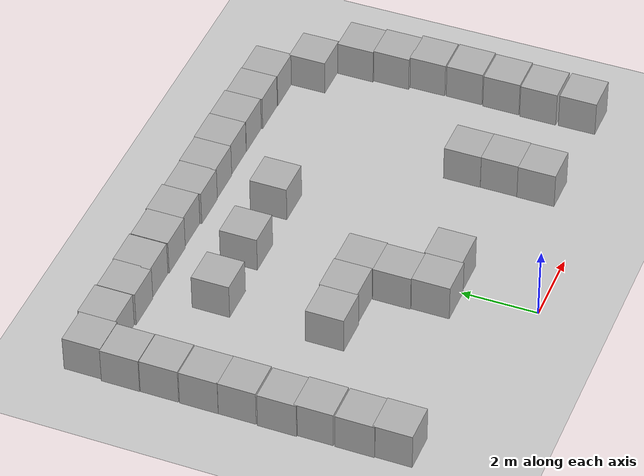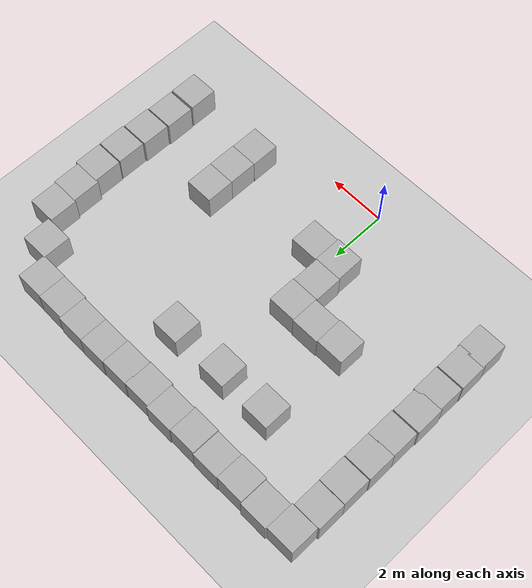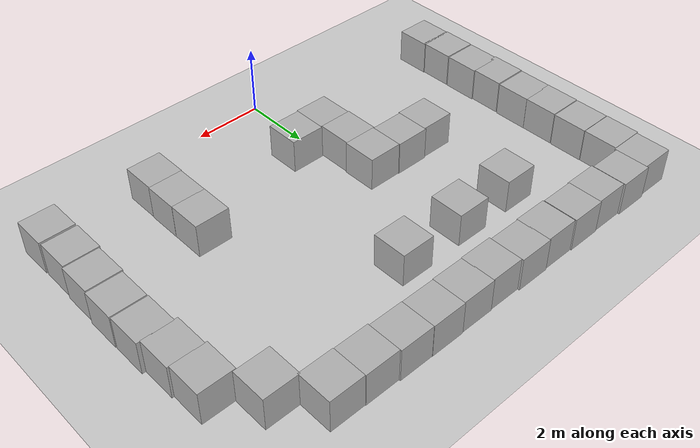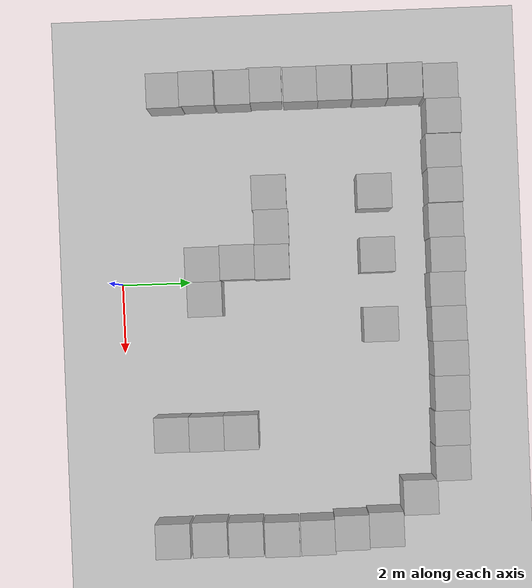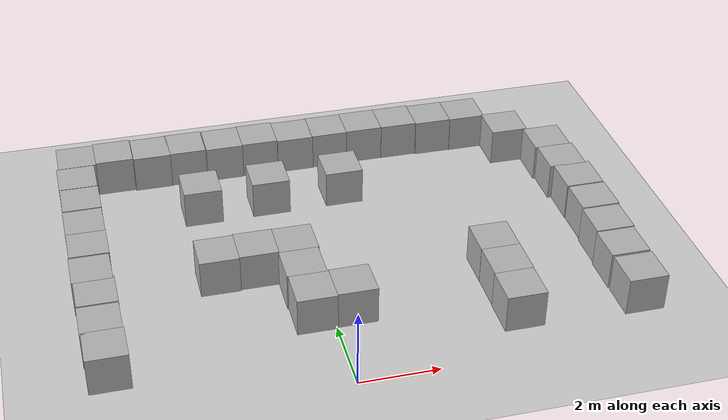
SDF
<sdf version="1.10">
 <world name="empty">
  <model name="ground_plane">
   <static>true</static>
   <link name="link">
    <collision name="collision">
     <geometry><plane><normal>0 0 1</normal><size>100 100</size></plane></geometry>
    </collision>
    <visual name="visual">
     <geometry><plane><normal>0 0 1</normal><size>100 100</size></plane></geometry>
     <material>
      <ambient>0.800000012 0.800000012 0.800000012 1</ambient>
      <diffuse>0.800000012 0.800000012 0.800000012 1</diffuse>
      <specular>0.800000012 0.800000012 0.800000012 1</specular>
     </material>
    </visual>
    <inertial>
     <mass>1</mass>
     <inertia><ixx>1</ixx><ixy>0</ixy><ixz>0</ixz><iyy>1</iyy><iyz>0</iyz><izz>1</izz></inertia>
    </inertial>
   </link>
  </model>
  <model name="box">
   <pose>0.524736697470924 2.5003364620057273 0.49999999019606367 2.0528233015395709e-11 1.9476678967544364e-08 2.0088363631572271e-07</pose>
   <link name="box_link">
    <inertial>
     <inertia><ixx>0.16666</ixx><ixy>0</ixy><ixz>0</ixz><iyy>0.16666</iyy><iyz>0</iyz><izz>0.16666</izz></inertia>
     <mass>1</mass>
    </inertial>
    <collision name="box_collision"><geometry><box><size>1 1 1</size></box></geometry></collision>
    <visual name="box_visual">
     <geometry><box><size>1 1 1</size></box></geometry>
     <material>
      <ambient>0.300000012 0.300000012 0.300000012 1</ambient>
      <diffuse>0.699999988 0.699999988 0.699999988 1</diffuse>
      <specular>1 1 1 1</specular>
     </material>
    </visual>
   </link>
   <static>false</static>
  </model>
  <model name="box_0">
   <pose>-0.47526292159905265 2.4642455740105049 0.49999999019962665 9.8009418239771478e-09 -6.7491993512226618e-13 3.7354885587755947e-07</pose>
   <link name="box_link">
    <inertial>
     <inertia><ixx>0.16666</ixx><ixy>0</ixy><ixz>0</ixz><iyy>0.16666</iyy><iyz>0</iyz><izz>0.16666</izz></inertia>
     <mass>1</mass>
    </inertial>
    <collision name="box_collision"><geometry><box><size>1 1 1</size></box></geometry></collision>
    <visual name="box_visual">
     <geometry><box><size>1 1 1</size></box></geometry>
     <material>
      <ambient>0.300000012 0.300000012 0.300000012 1</ambient>
      <diffuse>0.699999988 0.699999988 0.699999988 1</diffuse>
      <specular>1 1 1 1</specular>
     </material>
    </visual>
   </link>
   <static>false</static>
  </model>
  <model name="box_1">
   <pose>-0.50301739909293941 3.4642451154851952 0.49999999019874231 -1.9580852355804939e-08 -1.1360315727130862e-12 3.8592032094083983e-07</pose>
   <link name="box_link">
    <inertial>
     <inertia><ixx>0.16666</ixx><ixy>0</ixy><ixz>0</ixz><iyy>0.16666</iyy><iyz>0</iyz><izz>0.16666</izz></inertia>
     <mass>1</mass>
    </inertial>
    <collision name="box_collision"><geometry><box><size>1 1 1</size></box></geometry></collision>
    <visual name="box_visual">
     <geometry><box><size>1 1 1</size></box></geometry>
     <material>
      <ambient>0.300000012 0.300000012 0.300000012 1</ambient>
      <diffuse>0.699999988 0.699999988 0.699999988 1</diffuse>
      <specular>1 1 1 1</specular>
     </material>
    </visual>
   </link>
   <static>false</static>
  </model>
  <model name="box_10">
   <pose>4.3671556992405156 1.4044653718104809 0.49999999020050911 -1.4066092948692165e-08 4.1759308201097749e-12 2.3038047252878038e-05</pose>
   <link name="box_link">
    <inertial>
     <inertia><ixx>0.16666</ixx><ixy>0</ixy><ixz>0</ixz><iyy>0.16666</iyy><iyz>0</iyz><izz>0.16666</izz></inertia>
     <mass>1</mass>
    </inertial>
    <collision name="box_collision"><geometry><box><size>1 1 1</size></box></geometry></collision>
    <visual name="box_visual">
     <geometry><box><size>1 1 1</size></box></geometry>
     <material>
      <ambient>0.300000012 0.300000012 0.300000012 1</ambient>
      <diffuse>0.699999988 0.699999988 0.699999988 1</diffuse>
      <specular>1 1 1 1</specular>
     </material>
    </visual>
   </link>
   <static>false</static>
  </model>
  <model name="box_11">
   <pose>4.3795451639200085 2.4044762643899475 0.49999999020802821 1.9617229519158874e-08 8.1122862833365634e-11 2.9883756320125841e-07</pose>
   <link name="box_link">
    <inertial>
     <inertia><ixx>0.16666</ixx><ixy>0</ixy><ixz>0</ixz><iyy>0.16666</iyy><iyz>0</iyz><izz>0.16666</izz></inertia>
     <mass>1</mass>
    </inertial>
    <collision name="box_collision"><geometry><box><size>1 1 1</size></box></geometry></collision>
    <visual name="box_visual">
     <geometry><box><size>1 1 1</size></box></geometry>
     <material>
      <ambient>0.300000012 0.300000012 0.300000012 1</ambient>
      <diffuse>0.699999988 0.699999988 0.699999988 1</diffuse>
      <specular>1 1 1 1</specular>
     </material>
    </visual>
   </link>
   <static>false</static>
  </model>
  <model name="box_12">
   <pose>4.3763141297772838 3.3954105433026451 0.4999999901911259 -1.9559917834768265e-08 -7.3646884846316932e-12 5.846187059106633e-07</pose>
   <link name="box_link">
    <inertial>
     <inertia><ixx>0.16666</ixx><ixy>0</ixy><ixz>0</ixz><iyy>0.16666</iyy><iyz>0</iyz><izz>0.16666</izz></inertia>
     <mass>1</mass>
    </inertial>
    <collision name="box_collision"><geometry><box><size>1 1 1</size></box></geometry></collision>
    <visual name="box_visual">
     <geometry><box><size>1 1 1</size></box></geometry>
     <material>
      <ambient>0.300000012 0.300000012 0.300000012 1</ambient>
      <diffuse>0.699999988 0.699999988 0.699999988 1</diffuse>
      <specular>1 1 1 1</specular>
     </material>
    </visual>
   </link>
   <static>false</static>
  </model>
  <model name="box_13">
   <pose>3.4785942979263873 9.4888861230913797 0.49999999019871588 2.5021919377943448e-12 3.9188327872326739e-09 -2.7722733610105434e-07</pose>
   <link name="box_link">
    <inertial>
     <inertia><ixx>0.16666</ixx><ixy>0</ixy><ixz>0</ixz><iyy>0.16666</iyy><iyz>0</iyz><izz>0.16666</izz></inertia>
     <mass>1</mass>
    </inertial>
    <collision name="box_collision"><geometry><box><size>1 1 1</size></box></geometry></collision>
    <visual name="box_visual">
     <geometry><box><size>1 1 1</size></box></geometry>
     <material>
      <ambient>0.300000012 0.300000012 0.300000012 1</ambient>
      <diffuse>0.699999988 0.699999988 0.699999988 1</diffuse>
      <specular>1 1 1 1</specular>
     </material>
    </visual>
   </link>
   <static>false</static>
  </model>
  <model name="box_14">
   <pose>2.4785947645034661 9.4966416109474334 0.49999999018475866 -7.4069138696486001e-12 -9.4172170422715719e-09 -3.2357303575100427e-07</pose>
   <link name="box_link">
    <inertial>
     <inertia><ixx>0.16666</ixx><ixy>0</ixy><ixz>0</ixz><iyy>0.16666</iyy><iyz>0</iyz><izz>0.16666</izz></inertia>
     <mass>1</mass>
    </inertial>
    <collision name="box_collision"><geometry><box><size>1 1 1</size></box></geometry></collision>
    <visual name="box_visual">
     <geometry><box><size>1 1 1</size></box></geometry>
     <material>
      <ambient>0.300000012 0.300000012 0.300000012 1</ambient>
      <diffuse>0.699999988 0.699999988 0.699999988 1</diffuse>
      <specular>1 1 1 1</specular>
     </material>
    </visual>
   </link>
   <static>false</static>
  </model>
  <model name="box_15">
   <pose>4.4785942478098235 9.4492298926478089 0.49999999019985397 -6.7571858887571462e-13 4.1093077161975367e-09 -2.8177229611897375e-07</pose>
   <link name="box_link">
    <inertial>
     <inertia><ixx>0.16666</ixx><ixy>0</ixy><ixz>0</ixz><iyy>0.16666</iyy><iyz>0</iyz><izz>0.16666</izz></inertia>
     <mass>1</mass>
    </inertial>
    <collision name="box_collision"><geometry><box><size>1 1 1</size></box></geometry></collision>
    <visual name="box_visual">
     <geometry><box><size>1 1 1</size></box></geometry>
     <material>
      <ambient>0.300000012 0.300000012 0.300000012 1</ambient>
      <diffuse>0.699999988 0.699999988 0.699999988 1</diffuse>
      <specular>1 1 1 1</specular>
     </material>
    </visual>
   </link>
   <static>false</static>
  </model>
  <model name="box_16">
   <pose>5.4785943355100919 9.4350745346117506 0.49999999019984021 -6.7968710803913345e-13 3.921492205411589e-09 -2.7817858854219567e-07</pose>
   <link name="box_link">
    <inertial>
     <inertia><ixx>0.16666</ixx><ixy>0</ixy><ixz>0</ixz><iyy>0.16666</iyy><iyz>0</iyz><izz>0.16666</izz></inertia>
     <mass>1</mass>
    </inertial>
    <collision name="box_collision"><geometry><box><size>1 1 1</size></box></geometry></collision>
    <visual name="box_visual">
     <geometry><box><size>1 1 1</size></box></geometry>
     <material>
      <ambient>0.300000012 0.300000012 0.300000012 1</ambient>
      <diffuse>0.699999988 0.699999988 0.699999988 1</diffuse>
      <specular>1 1 1 1</specular>
     </material>
    </visual>
   </link>
   <static>false</static>
  </model>
  <model name="box_17">
   <pose>1.4785951337053422 9.4799652610031853 0.49999999019994373 -1.5249625503558359e-13 -1.3422235593269671e-08 -1.7206307201443844e-07</pose>
   <link name="box_link">
    <inertial>
     <inertia><ixx>0.16666</ixx><ixy>0</ixy><ixz>0</ixz><iyy>0.16666</iyy><iyz>0</iyz><izz>0.16666</izz></inertia>
     <mass>1</mass>
    </inertial>
    <collision name="box_collision"><geometry><box><size>1 1 1</size></box></geometry></collision>
    <visual name="box_visual">
     <geometry><box><size>1 1 1</size></box></geometry>
     <material>
      <ambient>0.300000012 0.300000012 0.300000012 1</ambient>
      <diffuse>0.699999988 0.699999988 0.699999988 1</diffuse>
      <specular>1 1 1 1</specular>
     </material>
    </visual>
   </link>
   <static>false</static>
  </model>
  <model name="box_18">
   <pose>0.50157591497799403 9.462697623218169 0.49999999020114666 -1.7186061489472927e-11 -1.9601732241907378e-08 -4.8818517006823555e-08</pose>
   <link name="box_link">
    <inertial>
     <inertia><ixx>0.16666</ixx><ixy>0</ixy><ixz>0</ixz><iyy>0.16666</iyy><iyz>0</iyz><izz>0.16666</izz></inertia>
     <mass>1</mass>
    </inertial>
    <collision name="box_collision"><geometry><box><size>1 1 1</size></box></geometry></collision>
    <visual name="box_visual">
     <geometry><box><size>1 1 1</size></box></geometry>
     <material>
      <ambient>0.300000012 0.300000012 0.300000012 1</ambient>
      <diffuse>0.699999988 0.699999988 0.699999988 1</diffuse>
      <specular>1 1 1 1</specular>
     </material>
    </visual>
   </link>
   <static>false</static>
  </model>
  <model name="box_19">
   <pose>-0.49842404471039115 9.5155142121650851 0.49999999019966845 3.8528456052840277e-12 -1.9596778538986776e-08 -4.8997244930443475e-08</pose>
   <link name="box_link">
    <inertial>
     <inertia><ixx>0.16666</ixx><ixy>0</ixy><ixz>0</ixz><iyy>0.16666</iyy><iyz>0</iyz><izz>0.16666</izz></inertia>
     <mass>1</mass>
    </inertial>
    <collision name="box_collision"><geometry><box><size>1 1 1</size></box></geometry></collision>
    <visual name="box_visual">
     <geometry><box><size>1 1 1</size></box></geometry>
     <material>
      <ambient>0.300000012 0.300000012 0.300000012 1</ambient>
      <diffuse>0.699999988 0.699999988 0.699999988 1</diffuse>
      <specular>1 1 1 1</specular>
     </material>
    </visual>
   </link>
   <static>false</static>
  </model>
  <model name="box_20">
   <pose>-1.4742271035418915 9.4912127328169777 0.49999999020099106 -9.7895765620471089e-12 -1.9604668503276315e-08 -4.5569773364331932e-07</pose>
   <link name="box_link">
    <inertial>
     <inertia><ixx>0.16666</ixx><ixy>0</ixy><ixz>0</ixz><iyy>0.16666</iyy><iyz>0</iyz><izz>0.16666</izz></inertia>
     <mass>1</mass>
    </inertial>
    <collision name="box_collision"><geometry><box><size>1 1 1</size></box></geometry></collision>
    <visual name="box_visual">
     <geometry><box><size>1 1 1</size></box></geometry>
     <material>
      <ambient>0.300000012 0.300000012 0.300000012 1</ambient>
      <diffuse>0.699999988 0.699999988 0.699999988 1</diffuse>
      <specular>1 1 1 1</specular>
     </material>
    </visual>
   </link>
   <static>false</static>
  </model>
  <model name="box_21">
   <pose>-0.47622361684656467 4.4642449989606847 0.49999999019962521 -1.4461815439606481e-08 2.177274633007747e-13 7.225565463141998e-08</pose>
   <link name="box_link">
    <inertial>
     <inertia><ixx>0.16666</ixx><ixy>0</ixy><ixz>0</ixz><iyy>0.16666</iyy><iyz>0</iyz><izz>0.16666</izz></inertia>
     <mass>1</mass>
    </inertial>
    <collision name="box_collision"><geometry><box><size>1 1 1</size></box></geometry></collision>
    <visual name="box_visual">
     <geometry><box><size>1 1 1</size></box></geometry>
     <material>
      <ambient>0.300000012 0.300000012 0.300000012 1</ambient>
      <diffuse>0.699999988 0.699999988 0.699999988 1</diffuse>
      <specular>1 1 1 1</specular>
     </material>
    </visual>
   </link>
   <static>false</static>
  </model>
  <model name="box_22">
   <pose>-1.4762231323036259 4.4839882101311641 0.5000001020282927 -7.6125261166845615e-10 2.3789208539099318e-07 -2.6386814999145798e-08</pose>
   <link name="box_link">
    <inertial>
     <inertia><ixx>0.16666</ixx><ixy>0</ixy><ixz>0</ixz><iyy>0.16666</iyy><iyz>0</iyz><izz>0.16666</izz></inertia>
     <mass>1</mass>
    </inertial>
    <collision name="box_collision"><geometry><box><size>1 1 1</size></box></geometry></collision>
    <visual name="box_visual">
     <geometry><box><size>1 1 1</size></box></geometry>
     <material>
      <ambient>0.300000012 0.300000012 0.300000012 1</ambient>
      <diffuse>0.699999988 0.699999988 0.699999988 1</diffuse>
      <specular>1 1 1 1</specular>
     </material>
    </visual>
   </link>
   <static>false</static>
  </model>
  <model name="box_23">
   <pose>-2.4929506777758581 9.5168052536606726 0.49999999019955771 -7.453748859052733e-13 1.9599126148115115e-08 -1.7627971582793917e-08</pose>
   <link name="box_link">
    <inertial>
     <inertia><ixx>0.16666</ixx><ixy>0</ixy><ixz>0</ixz><iyy>0.16666</iyy><iyz>0</iyz><izz>0.16666</izz></inertia>
     <mass>1</mass>
    </inertial>
    <collision name="box_collision"><geometry><box><size>1 1 1</size></box></geometry></collision>
    <visual name="box_visual">
     <geometry><box><size>1 1 1</size></box></geometry>
     <material>
      <ambient>0.300000012 0.300000012 0.300000012 1</ambient>
      <diffuse>0.699999988 0.699999988 0.699999988 1</diffuse>
      <specular>1 1 1 1</specular>
     </material>
    </visual>
   </link>
   <static>false</static>
  </model>
  <model name="box_24">
   <pose>-3.4609139751847557 9.4959633999755457 0.49999999020047681 1.6362069076355865e-12 -1.9600981089067922e-08 -4.6286526147339579e-07</pose>
   <link name="box_link">
    <inertial>
     <inertia><ixx>0.16666</ixx><ixy>0</ixy><ixz>0</ixz><iyy>0.16666</iyy><iyz>0</iyz><izz>0.16666</izz></inertia>
     <mass>1</mass>
    </inertial>
    <collision name="box_collision"><geometry><box><size>1 1 1</size></box></geometry></collision>
    <visual name="box_visual">
     <geometry><box><size>1 1 1</size></box></geometry>
     <material>
      <ambient>0.300000012 0.300000012 0.300000012 1</ambient>
      <diffuse>0.699999988 0.699999988 0.699999988 1</diffuse>
      <specular>1 1 1 1</specular>
     </material>
    </visual>
   </link>
   <static>false</static>
  </model>
  <model name="box_25">
   <pose>-4.4728117546722723 9.542798497343048 0.49999999019962665 -2.2712539612192383e-13 8.352600245621544e-09 2.0626419607356885e-09</pose>
   <link name="box_link">
    <inertial>
     <inertia><ixx>0.16666</ixx><ixy>0</ixy><ixz>0</ixz><iyy>0.16666</iyy><iyz>0</iyz><izz>0.16666</izz></inertia>
     <mass>1</mass>
    </inertial>
    <collision name="box_collision"><geometry><box><size>1 1 1</size></box></geometry></collision>
    <visual name="box_visual">
     <geometry><box><size>1 1 1</size></box></geometry>
     <material>
      <ambient>0.300000012 0.300000012 0.300000012 1</ambient>
      <diffuse>0.699999988 0.699999988 0.699999988 1</diffuse>
      <specular>1 1 1 1</specular>
     </material>
    </visual>
   </link>
   <static>false</static>
  </model>
  <model name="box_26">
   <pose>-5.4728114347913692 9.4906921811964438 0.4999999914610786 2.2767488867195718e-13 -8.3779736211777681e-09 2.0830650656288485e-09</pose>
   <link name="box_link">
    <inertial>
     <inertia><ixx>0.16666</ixx><ixy>0</ixy><ixz>0</ixz><iyy>0.16666</iyy><iyz>0</iyz><izz>0.16666</izz></inertia>
     <mass>1</mass>
    </inertial>
    <collision name="box_collision"><geometry><box><size>1 1 1</size></box></geometry></collision>
    <visual name="box_visual">
     <geometry><box><size>1 1 1</size></box></geometry>
     <material>
      <ambient>0.300000012 0.300000012 0.300000012 1</ambient>
      <diffuse>0.699999988 0.699999988 0.699999988 1</diffuse>
      <specular>1 1 1 1</specular>
     </material>
    </visual>
   </link>
   <static>false</static>
  </model>
  <model name="box_27">
   <pose>-5.5258745283655175 8.4822873289778293 0.49999999990199806 2.163106304372845e-21 -1.6560291693952328e-21 2.2452215946946745e-23</pose>
   <link name="box_link">
    <inertial>
     <inertia><ixx>0.16666</ixx><ixy>0</ixy><ixz>0</ixz><iyy>0.16666</iyy><iyz>0</iyz><izz>0.16666</izz></inertia>
     <mass>1</mass>
    </inertial>
    <collision name="box_collision"><geometry><box><size>1 1 1</size></box></geometry></collision>
    <visual name="box_visual">
     <geometry><box><size>1 1 1</size></box></geometry>
     <material>
      <ambient>0.300000012 0.300000012 0.300000012 1</ambient>
      <diffuse>0.699999988 0.699999988 0.699999988 1</diffuse>
      <specular>1 1 1 1</specular>
     </material>
    </visual>
   </link>
   <static>false</static>
  </model>
  <model name="box_28">
   <pose>-5.517485968973352 7.4699410133515993 0.49999999990199806 2.163106304372845e-21 -1.6560291693952328e-21 2.2452215946946745e-23</pose>
   <link name="box_link">
    <inertial>
     <inertia><ixx>0.16666</ixx><ixy>0</ixy><ixz>0</ixz><iyy>0.16666</iyy><iyz>0</iyz><izz>0.16666</izz></inertia>
     <mass>1</mass>
    </inertial>
    <collision name="box_collision"><geometry><box><size>1 1 1</size></box></geometry></collision>
    <visual name="box_visual">
     <geometry><box><size>1 1 1</size></box></geometry>
     <material>
      <ambient>0.300000012 0.300000012 0.300000012 1</ambient>
      <diffuse>0.699999988 0.699999988 0.699999988 1</diffuse>
      <specular>1 1 1 1</specular>
     </material>
    </visual>
   </link>
   <static>false</static>
  </model>
  <model name="box_29">
   <pose>-5.5276196068390799 6.4439587581969944 0.49999999020075725 -1.9457309302596409e-08 -8.2510369569541207e-13 -1.7318396300007975e-07</pose>
   <link name="box_link">
    <inertial>
     <inertia><ixx>0.16666</ixx><ixy>0</ixy><ixz>0</ixz><iyy>0.16666</iyy><iyz>0</iyz><izz>0.16666</izz></inertia>
     <mass>1</mass>
    </inertial>
    <collision name="box_collision"><geometry><box><size>1 1 1</size></box></geometry></collision>
    <visual name="box_visual">
     <geometry><box><size>1 1 1</size></box></geometry>
     <material>
      <ambient>0.300000012 0.300000012 0.300000012 1</ambient>
      <diffuse>0.699999988 0.699999988 0.699999988 1</diffuse>
      <specular>1 1 1 1</specular>
     </material>
    </visual>
   </link>
   <static>false</static>
  </model>
  <model name="box_30">
   <pose>-5.5223616253347041 5.471669454354207 0.49999999021913916 1.9639456774705976e-08 1.3119336727615174e-10 3.0800938336529582e-07</pose>
   <link name="box_link">
    <inertial>
     <inertia><ixx>0.16666</ixx><ixy>0</ixy><ixz>0</ixz><iyy>0.16666</iyy><iyz>0</iyz><izz>0.16666</izz></inertia>
     <mass>1</mass>
    </inertial>
    <collision name="box_collision"><geometry><box><size>1 1 1</size></box></geometry></collision>
    <visual name="box_visual">
     <geometry><box><size>1 1 1</size></box></geometry>
     <material>
      <ambient>0.300000012 0.300000012 0.300000012 1</ambient>
      <diffuse>0.699999988 0.699999988 0.699999988 1</diffuse>
      <specular>1 1 1 1</specular>
     </material>
    </visual>
   </link>
   <static>false</static>
  </model>
  <model name="box_31">
   <pose>-5.5089277593279906 3.5174007969727259 0.49999999990199806 -2.052788585189231e-21 7.9840368278892396e-22 1.4978535966898781e-22</pose>
   <link name="box_link">
    <inertial>
     <inertia><ixx>0.16666</ixx><ixy>0</ixy><ixz>0</ixz><iyy>0.16666</iyy><iyz>0</iyz><izz>0.16666</izz></inertia>
     <mass>1</mass>
    </inertial>
    <collision name="box_collision"><geometry><box><size>1 1 1</size></box></geometry></collision>
    <visual name="box_visual">
     <geometry><box><size>1 1 1</size></box></geometry>
     <material>
      <ambient>0.300000012 0.300000012 0.300000012 1</ambient>
      <diffuse>0.699999988 0.699999988 0.699999988 1</diffuse>
      <specular>1 1 1 1</specular>
     </material>
    </visual>
   </link>
   <static>false</static>
  </model>
  <model name="box_32">
   <pose>-5.5172524739955291 2.4810196983479491 0.50000015276847132 -3.4473811025293725e-07 -5.9410170553308429e-10 -1.6423827287423382e-07</pose>
   <link name="box_link">
    <inertial>
     <inertia><ixx>0.16666</ixx><ixy>0</ixy><ixz>0</ixz><iyy>0.16666</iyy><iyz>0</iyz><izz>0.16666</izz></inertia>
     <mass>1</mass>
    </inertial>
    <collision name="box_collision"><geometry><box><size>1 1 1</size></box></geometry></collision>
    <visual name="box_visual">
     <geometry><box><size>1 1 1</size></box></geometry>
     <material>
      <ambient>0.300000012 0.300000012 0.300000012 1</ambient>
      <diffuse>0.699999988 0.699999988 0.699999988 1</diffuse>
      <specular>1 1 1 1</specular>
     </material>
    </visual>
   </link>
   <static>false</static>
  </model>
  <model name="box_33">
   <pose>-5.4938310982191316 1.5486502774146775 0.50000000609695272 5.1395071373663308e-08 5.9405841661601581e-10 3.2911478057488077e-07</pose>
   <link name="box_link">
    <inertial>
     <inertia><ixx>0.16666</ixx><ixy>0</ixy><ixz>0</ixz><iyy>0.16666</iyy><iyz>0</iyz><izz>0.16666</izz></inertia>
     <mass>1</mass>
    </inertial>
    <collision name="box_collision"><geometry><box><size>1 1 1</size></box></geometry></collision>
    <visual name="box_visual">
     <geometry><box><size>1 1 1</size></box></geometry>
     <material>
      <ambient>0.300000012 0.300000012 0.300000012 1</ambient>
      <diffuse>0.699999988 0.699999988 0.699999988 1</diffuse>
      <specular>1 1 1 1</specular>
     </material>
    </visual>
   </link>
   <static>false</static>
  </model>
  <model name="box_35">
   <pose>-2.4655908885305462 4.4504990049421753 0.49999998998420303 9.3383194149858143e-09 -2.7699930956884578e-08 -4.6330710261709855e-07</pose>
   <link name="box_link">
    <inertial>
     <inertia><ixx>0.16666</ixx><ixy>0</ixy><ixz>0</ixz><iyy>0.16666</iyy><iyz>0</iyz><izz>0.16666</izz></inertia>
     <mass>1</mass>
    </inertial>
    <collision name="box_collision"><geometry><box><size>1 1 1</size></box></geometry></collision>
    <visual name="box_visual">
     <geometry><box><size>1 1 1</size></box></geometry>
     <material>
      <ambient>0.300000012 0.300000012 0.300000012 1</ambient>
      <diffuse>0.699999988 0.699999988 0.699999988 1</diffuse>
      <specular>1 1 1 1</specular>
     </material>
    </visual>
   </link>
   <static>false</static>
  </model>
  <model name="box_36">
   <pose>1.4277240781287981 7.5257092076601309 0.49999999990199806 -2.174259130479501e-21 2.6141751187643542e-21 -2.5414653921890289e-22</pose>
   <link name="box_link">
    <inertial>
     <inertia><ixx>0.16666</ixx><ixy>0</ixy><ixz>0</ixz><iyy>0.16666</iyy><iyz>0</iyz><izz>0.16666</izz></inertia>
     <mass>1</mass>
    </inertial>
    <collision name="box_collision"><geometry><box><size>1 1 1</size></box></geometry></collision>
    <visual name="box_visual">
     <geometry><box><size>1 1 1</size></box></geometry>
     <material>
      <ambient>0.300000012 0.300000012 0.300000012 1</ambient>
      <diffuse>0.699999988 0.699999988 0.699999988 1</diffuse>
      <specular>1 1 1 1</specular>
     </material>
    </visual>
   </link>
   <static>false</static>
  </model>
  <model name="box_37">
   <pose>-0.56934238787718394 7.5008312032303799 0.49999999990199806 2.163106304372845e-21 -1.6560291693952328e-21 2.2452215946946745e-23</pose>
   <link name="box_link">
    <inertial>
     <inertia><ixx>0.16666</ixx><ixy>0</ixy><ixz>0</ixz><iyy>0.16666</iyy><iyz>0</iyz><izz>0.16666</izz></inertia>
     <mass>1</mass>
    </inertial>
    <collision name="box_collision"><geometry><box><size>1 1 1</size></box></geometry></collision>
    <visual name="box_visual">
     <geometry><box><size>1 1 1</size></box></geometry>
     <material>
      <ambient>0.300000012 0.300000012 0.300000012 1</ambient>
      <diffuse>0.699999988 0.699999988 0.699999988 1</diffuse>
      <specular>1 1 1 1</specular>
     </material>
    </visual>
   </link>
   <static>false</static>
  </model>
  <model name="box_38">
   <pose>-2.3870798560766691 7.4775257778869229 0.49999999990199806 2.163106304372845e-21 -1.6560291693952328e-21 2.2452215946946745e-23</pose>
   <link name="box_link">
    <inertial>
     <inertia><ixx>0.16666</ixx><ixy>0</ixy><ixz>0</ixz><iyy>0.16666</iyy><iyz>0</iyz><izz>0.16666</izz></inertia>
     <mass>1</mass>
    </inertial>
    <collision name="box_collision"><geometry><box><size>1 1 1</size></box></geometry></collision>
    <visual name="box_visual">
     <geometry><box><size>1 1 1</size></box></geometry>
     <material>
      <ambient>0.300000012 0.300000012 0.300000012 1</ambient>
      <diffuse>0.699999988 0.699999988 0.699999988 1</diffuse>
      <specular>1 1 1 1</specular>
     </material>
    </visual>
   </link>
   <static>false</static>
  </model>
  <model name="box_46">
   <pose>-5.5437839481308764 4.4324389122941383 0.5 0 0 0</pose>
   <link name="box_link">
    <inertial>
     <inertia><ixx>0.16666</ixx><ixy>0</ixy><ixz>0</ixz><iyy>0.16666</iyy><iyz>0</iyz><izz>0.16666</izz></inertia>
     <mass>1</mass>
    </inertial>
    <collision name="box_collision"><geometry><box><size>1 1 1</size></box></geometry></collision>
    <visual name="box_visual">
     <geometry><box><size>1 1 1</size></box></geometry>
     <material>
      <ambient>0.300000012 0.300000012 0.300000012 1</ambient>
      <diffuse>0.699999988 0.699999988 0.699999988 1</diffuse>
      <specular>1 1 1 1</specular>
     </material>
    </visual>
   </link>
   <static>false</static>
  </model>
  <model name="box_54">
   <pose>6.4241721393019393 8.4784034870103859 0.5 0 0 0</pose>
   <link name="box_link">
    <inertial>
     <inertia><ixx>0.16666</ixx><ixy>0</ixy><ixz>0</ixz><iyy>0.16666</iyy><iyz>0</iyz><izz>0.16666</izz></inertia>
     <mass>1</mass>
    </inertial>
    <collision name="box_collision"><geometry><box><size>1 1 1</size></box></geometry></collision>
    <visual name="box_visual">
     <geometry><box><size>1 1 1</size></box></geometry>
     <material>
      <ambient>0.300000012 0.300000012 0.300000012 1</ambient>
      <diffuse>0.699999988 0.699999988 0.699999988 1</diffuse>
      <specular>1 1 1 1</specular>
     </material>
    </visual>
   </link>
   <static>false</static>
  </model>
  <model name="box_55">
   <pose>7.3110065362873886 7.4626331119280298 0.5 0 0 0</pose>
   <link name="box_link">
    <inertial>
     <inertia><ixx>0.16666</ixx><ixy>0</ixy><ixz>0</ixz><iyy>0.16666</iyy><iyz>0</iyz><izz>0.16666</izz></inertia>
     <mass>1</mass>
    </inertial>
    <collision name="box_collision"><geometry><box><size>1 1 1</size></box></geometry></collision>
    <visual name="box_visual">
     <geometry><box><size>1 1 1</size></box></geometry>
     <material>
      <ambient>0.300000012 0.300000012 0.300000012 1</ambient>
      <diffuse>0.699999988 0.699999988 0.699999988 1</diffuse>
      <specular>1 1 1 1</specular>
     </material>
    </visual>
   </link>
   <static>false</static>
  </model>
  <model name="box_56">
   <pose>7.3675086976788879 6.4734725313705237 0.5 0 0 0</pose>
   <link name="box_link">
    <inertial>
     <inertia><ixx>0.16666</ixx><ixy>0</ixy><ixz>0</ixz><iyy>0.16666</iyy><iyz>0</iyz><izz>0.16666</izz></inertia>
     <mass>1</mass>
    </inertial>
    <collision name="box_collision"><geometry><box><size>1 1 1</size></box></geometry></collision>
    <visual name="box_visual">
     <geometry><box><size>1 1 1</size></box></geometry>
     <material>
      <ambient>0.300000012 0.300000012 0.300000012 1</ambient>
      <diffuse>0.699999988 0.699999988 0.699999988 1</diffuse>
      <specular>1 1 1 1</specular>
     </material>
    </visual>
   </link>
   <static>false</static>
  </model>
  <model name="box_57">
   <pose>7.4679167898663152 5.4907359804758578 0.5 0 0 0</pose>
   <link name="box_link">
    <inertial>
     <inertia><ixx>0.16666</ixx><ixy>0</ixy><ixz>0</ixz><iyy>0.16666</iyy><iyz>0</iyz><izz>0.16666</izz></inertia>
     <mass>1</mass>
    </inertial>
    <collision name="box_collision"><geometry><box><size>1 1 1</size></box></geometry></collision>
    <visual name="box_visual">
     <geometry><box><size>1 1 1</size></box></geometry>
     <material>
      <ambient>0.300000012 0.300000012 0.300000012 1</ambient>
      <diffuse>0.699999988 0.699999988 0.699999988 1</diffuse>
      <specular>1 1 1 1</specular>
     </material>
    </visual>
   </link>
   <static>false</static>
  </model>
  <model name="box_58">
   <pose>7.4785165618520271 4.4570145590122445 0.5 0 0 0</pose>
   <link name="box_link">
    <inertial>
     <inertia><ixx>0.16666</ixx><ixy>0</ixy><ixz>0</ixz><iyy>0.16666</iyy><iyz>0</iyz><izz>0.16666</izz></inertia>
     <mass>1</mass>
    </inertial>
    <collision name="box_collision"><geometry><box><size>1 1 1</size></box></geometry></collision>
    <visual name="box_visual">
     <geometry><box><size>1 1 1</size></box></geometry>
     <material>
      <ambient>0.300000012 0.300000012 0.300000012 1</ambient>
      <diffuse>0.699999988 0.699999988 0.699999988 1</diffuse>
      <specular>1 1 1 1</specular>
     </material>
    </visual>
   </link>
   <static>false</static>
  </model>
  <model name="box_59">
   <pose>7.4423797728622922 3.4206205428486447 0.5 0 0 0</pose>
   <link name="box_link">
    <inertial>
     <inertia><ixx>0.16666</ixx><ixy>0</ixy><ixz>0</ixz><iyy>0.16666</iyy><iyz>0</iyz><izz>0.16666</izz></inertia>
     <mass>1</mass>
    </inertial>
    <collision name="box_collision"><geometry><box><size>1 1 1</size></box></geometry></collision>
    <visual name="box_visual">
     <geometry><box><size>1 1 1</size></box></geometry>
     <material>
      <ambient>0.300000012 0.300000012 0.300000012 1</ambient>
      <diffuse>0.699999988 0.699999988 0.699999988 1</diffuse>
      <specular>1 1 1 1</specular>
     </material>
    </visual>
   </link>
   <static>false</static>
  </model>
  <model name="box_60">
   <pose>7.4062054996970943 2.387561354373601 0.5 0 0 0</pose>
   <link name="box_link">
    <inertial>
     <inertia><ixx>0.16666</ixx><ixy>0</ixy><ixz>0</ixz><iyy>0.16666</iyy><iyz>0</iyz><izz>0.16666</izz></inertia>
     <mass>1</mass>
    </inertial>
    <collision name="box_collision"><geometry><box><size>1 1 1</size></box></geometry></collision>
    <visual name="box_visual">
     <geometry><box><size>1 1 1</size></box></geometry>
     <material>
      <ambient>0.300000012 0.300000012 0.300000012 1</ambient>
      <diffuse>0.699999988 0.699999988 0.699999988 1</diffuse>
      <specular>1 1 1 1</specular>
     </material>
    </visual>
   </link>
   <static>false</static>
  </model>
  <model name="box_61">
   <pose>7.4198466287325004 1.3230680909227215 0.5 0 0 0</pose>
   <link name="box_link">
    <inertial>
     <inertia><ixx>0.16666</ixx><ixy>0</ixy><ixz>0</ixz><iyy>0.16666</iyy><iyz>0</iyz><izz>0.16666</izz></inertia>
     <mass>1</mass>
    </inertial>
    <collision name="box_collision"><geometry><box><size>1 1 1</size></box></geometry></collision>
    <visual name="box_visual">
     <geometry><box><size>1 1 1</size></box></geometry>
     <material>
      <ambient>0.300000012 0.300000012 0.300000012 1</ambient>
      <diffuse>0.699999988 0.699999988 0.699999988 1</diffuse>
      <specular>1 1 1 1</specular>
     </material>
    </visual>
   </link>
   <static>false</static>
  </model>
 </world>
</sdf>
